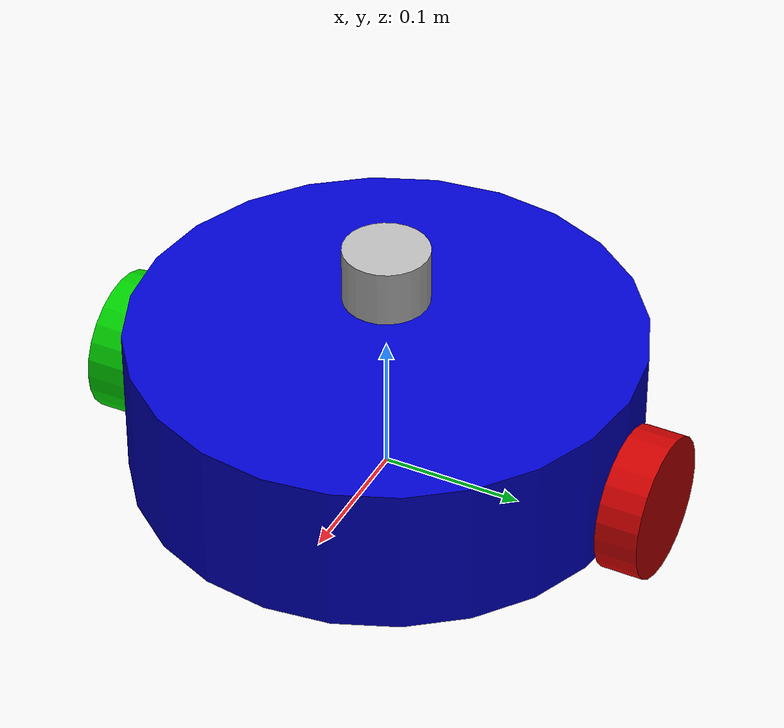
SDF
<?xml version="1.0" ?>
<sdf version="1.8">
    <model name='qbot' canonical_link='base_link'>
        <pose>0 0 0 0 0 0</pose>

        <!-- ROS2 Control Plugin -->
        <plugin name="gz_ros2_control::GazeboSimROS2ControlPlugin" filename="libgz_ros2_control-system.so">
            <parameters>/home/hg/Documents/Robotics Labs/Project/final-project-self-name/ros_project_ws/src/qbot_description/config/qbot_controllers.yaml</parameters>
            <controller_manager_prefix_node_name>robot1</controller_manager_prefix_node_name>
        </plugin>

        <ros2_control name="qbot_system" type="system">
            <hardware>
                <plugin>gz_ros2_control/GazeboSimSystem</plugin>
            </hardware>
            <joint name="wheel_left_joint">
                <command_interface name="velocity"><param name="min">-10</param><param name="max">10</param></command_interface>
                <state_interface name="position"/><state_interface name="velocity"/>
            </joint>
            <joint name="wheel_right_joint">
                <command_interface name="velocity"><param name="min">-10</param><param name="max">10</param></command_interface>
                <state_interface name="position"/><state_interface name="velocity"/>
            </joint>
        </ros2_control>

        <!-- Base Link -->
        <link name='base_link'>
            <pose>0 0 0.05949 0 0 0</pose>
            <inertial>
                <mass>2.4</mass>
                <inertia>
                    <ixx>0.019995</ixx><ixy>0</ixy><ixz>0</ixz>
                    <iyy>0.019995</iyy><iyz>0</iyz><izz>0.03675</izz>
                </inertia>
            </inertial>
            <visual name='base_visual'>
                <geometry><cylinder><radius>0.178</radius><length>0.10938</length></cylinder></geometry>
                <material><ambient>0.0 0.0 0.8 1</ambient><diffuse>0.0 0.0 0.8 1</diffuse><specular>1 1 1 1</specular></material>
            </visual>
            <collision name='base_collision'>
                <geometry><cylinder><radius>0.178</radius><length>0.10938</length></cylinder></geometry>
            </collision>
        </link>

        <!-- Left Wheel -->
        <link name='wheel_left_link'>
            <pose relative_to='base_link'>0 0.193 -0.0245 -1.570796 0 0</pose>
            <inertial><mass>0.1</mass><inertia><ixx>0.001</ixx><ixy>0</ixy><ixz>0</ixz><iyy>0.001</iyy><iyz>0</iyz><izz>0.001</izz></inertia></inertial>
            <visual name='wheel_left_visual'>
                <geometry><cylinder><radius>0.05</radius><length>0.03</length></cylinder></geometry>
                <material><ambient>0.8 0.0 0.0 1</ambient><diffuse>0.8 0.0 0.0 1</diffuse></material>
            </visual>
            <collision name='wheel_left_collision'>
                <geometry><cylinder><radius>0.05</radius><length>0.03</length></cylinder></geometry>
            </collision>
        </link>

        <!-- Right Wheel -->
        <link name='wheel_right_link'>
            <pose relative_to='base_link'>0 -0.193 -0.0245 -1.570796 0 0</pose>
            <inertial><mass>0.1</mass><inertia><ixx>0.001</ixx><ixy>0</ixy><ixz>0</ixz><iyy>0.001</iyy><iyz>0</iyz><izz>0.001</izz></inertia></inertial>
            <visual name='wheel_right_visual'>
                <geometry><cylinder><radius>0.05</radius><length>0.03</length></cylinder></geometry>
                <material><ambient>0.0 0.8 0.0 1</ambient><diffuse>0.0 0.8 0.0 1</diffuse></material>
            </visual>
            <collision name='wheel_right_collision'>
                <geometry><cylinder><radius>0.05</radius><length>0.03</length></cylinder></geometry>
            </collision>
        </link>

        <!-- Lidar Link and Sensor -->
        <link name='lidar_link'>
            <pose relative_to='base_link'>0 0 0.1 0 0 0</pose>
            <visual name='lidar_visual'>
                <geometry><cylinder><radius>0.03</radius><length>0.04</length></cylinder></geometry>
            </visual>
            <sensor name='gpu_lidar' type='gpu_lidar'>
                <pose>0 0 0 0 0 0</pose>
                <topic>/robot1/scan</topic>
                <gz_frame_id>robot1/lidar_link</gz_frame_id>
                <update_rate>10</update_rate>
                <lidar>
                    <scan><horizontal><samples>640</samples><resolution>1</resolution><min_angle>-3.14</min_angle><max_angle>3.14</max_angle></horizontal></scan>
                    <range><min>0.1</min><max>10.0</max></range>
                </lidar>
                <always_on>1</always_on>
                <visualize>true</visualize>
            </sensor>
        </link>

        <!-- Physical Joints -->
        <joint name='wheel_left_joint' type='revolute'>
            <parent>base_link</parent><child>wheel_left_link</child>
            <axis><xyz>0 0 1</xyz><limit><lower>-1e16</lower><upper>1e16</upper></limit></axis>
        </joint>

        <joint name='wheel_right_joint' type='revolute'>
            <parent>base_link</parent><child>wheel_right_link</child>
            <axis><xyz>0 0 1</xyz><limit><lower>-1e16</lower><upper>1e16</upper></limit></axis>
        </joint>

        <joint name='lidar_joint' type='fixed'>
            <parent>base_link</parent><child>lidar_link</child>
        </joint>

        <!-- Casters  -->
        <link name='caster_front_link'>
            <pose relative_to='base_link'>0.115 0 -0.0485 0 0 0</pose>
            <visual name='v'><geometry><sphere><radius>0.025</radius></sphere></geometry></visual>
            <collision name='c'><geometry><sphere><radius>0.025</radius></sphere></geometry></collision>
        </link>
        <joint name='caster_front_joint' type='ball'><parent>base_link</parent><child>caster_front_link</child></joint>

        <link name='caster_back_link'>
            <pose relative_to='base_link'>-0.135 0 -0.0485 0 0 0</pose>
            <visual name='v'><geometry><sphere><radius>0.025</radius></sphere></geometry></visual>
            <collision name='c'><geometry><sphere><radius>0.025</radius></sphere></geometry></collision>
        </link>
        <joint name='caster_back_joint' type='ball'><parent>base_link</parent><child>caster_back_link</child></joint>

    </model>
</sdf>
